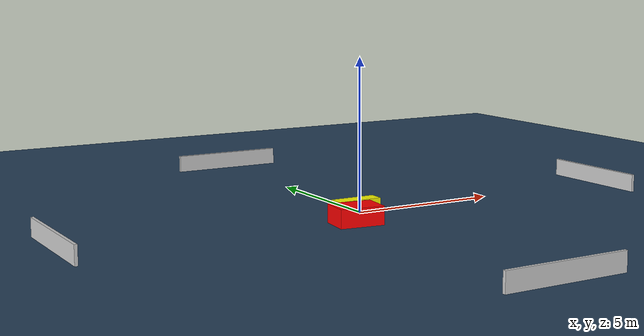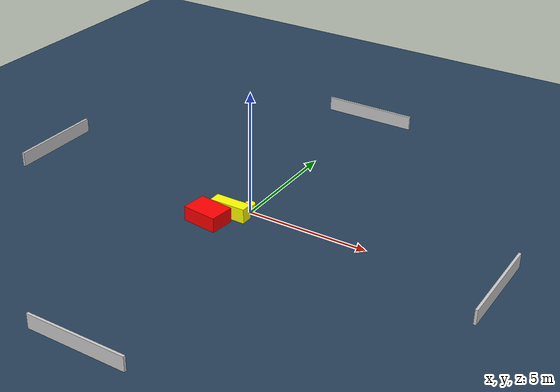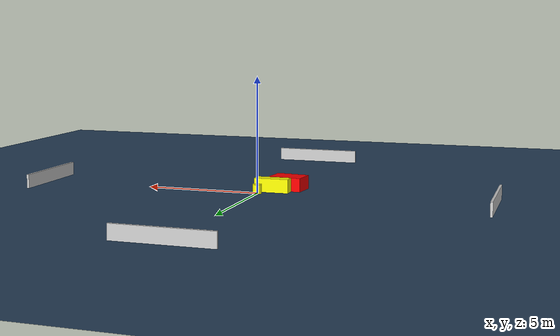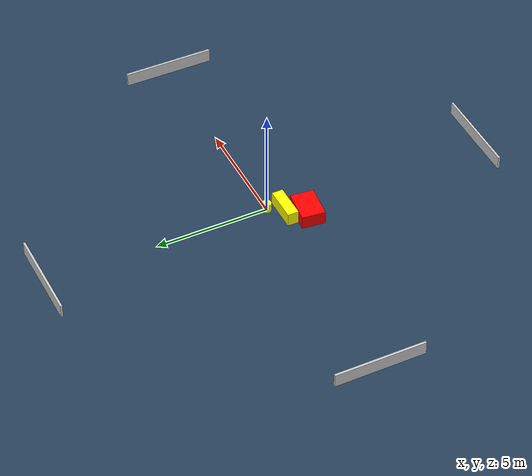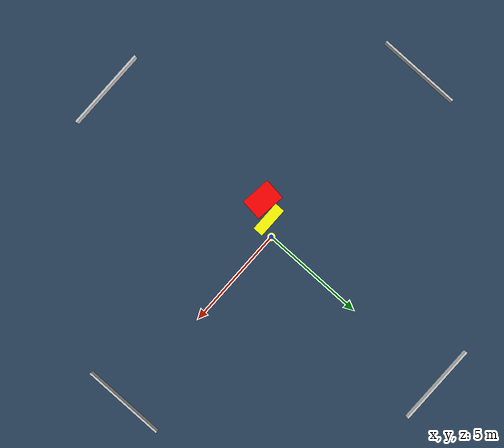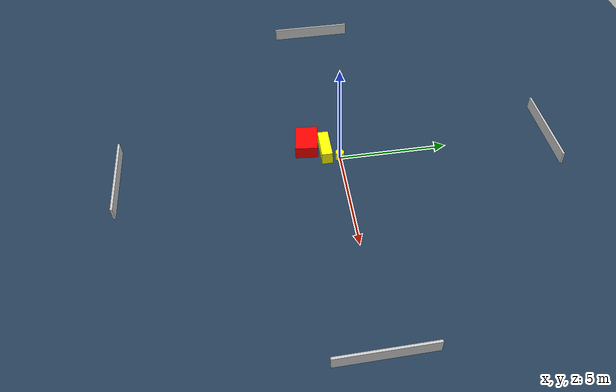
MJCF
<?xml version="1.0" ?>
<mujoco model="generated_environment">
  <option timestep="0.01" integrator="RK4" cone="elliptic"/>
  <default>
    <geom density="1"/>
  </default>
  <asset>
    <texture builtin="gradient" height="3072" name="skybox" rgb1="0.3 0.5 0.7" rgb2="0 0 0" type="skybox" width="512"/>
    <texture builtin="checker" height="300" name="groundplane" rgb1="0.2 0.3 0.4" rgb2="0.1 0.2 0.3" type="2d" width="300"/>
    <material name="groundplane" reflectance="0.2" texrepeat="5 5" texture="groundplane"/>
  </asset>
  <worldbody>
    <light dir="0 0 -1" directional="true" pos="0 0 1.5"/>
    <geom condim="3" friction="0.5 0.005 0.001" material="groundplane" name="floor" pos="0 0 0" size="0 0 0.05" type="plane"/>
    <body name="walls">
      <geom name="wall_1" condim="4" pos="-10.0 0.0 0.3" rgba="0.800000011920929 0.800000011920929 0.800000011920929 1.0" size="0.05 2.0 0.3" type="box"/>
      <geom name="wall_2" condim="4" pos="10.0 0.0 0.3" rgba="0.800000011920929 0.800000011920929 0.800000011920929 1.0" size="0.05 2.0 0.3" type="box"/>
      <geom name="wall_3" condim="4" pos="0.0 -10.0 0.3" rgba="0.800000011920929 0.800000011920929 0.800000011920929 1.0" size="2.0 0.05 0.3" type="box"/>
      <geom name="wall_4" condim="4" pos="0.0 10.0 0.3" rgba="0.800000011920929 0.800000011920929 0.800000011920929 1.0" size="2.0 0.05 0.3" type="box"/>
    </body>
    <body name="robot">
      <joint name="joint_x" type="slide" pos="0 0 0" axis="1 0 0"/>
      <joint name="joint_y" type="slide" pos="0 0 0" axis="0 1 0"/>
      <geom name="robot" type="cylinder" pos="0.0 0.0 0.2" size="0.2 0.2 0.0" mass="5.0" friction="1.0 0.005 0.0001" condim="4" rgba="1.0 1.0 0.0 1.0"/>
    </body>
    <body name="obstacle_1_movable">
      <geom name="obstacle_1_movable" condim="4" pos="-0.5020420900560435 -0.6086521002049726 0.3" euler="0 0 90.1780263083968" friction="0.0 0.005 0.001" rgba="1.0 1.0 0.0 1.0" size="0.2488324864055988 0.7515851420532547 0.3" type="box" mass="0.1"/>
      <joint type="free"/>
    </body>
    <body name="obstacle_2_static">
      <geom name="obstacle_2_static" condim="4" pos="-0.9967071292128158 -1.4101233268850855 0.3" euler="0 0 83.51457737902543" friction="0.0 0.005 0.001" rgba="1.0 0.0 0.0 1.0" size="0.5173222107748651 0.7245841984837176 0.3" type="box"/>
    </body>
  </worldbody>
  <actuator>
    <motor name="actuator_x" joint="joint_x" gear="1" ctrlrange="-1 1"/>
    <motor name="actuator_y" joint="joint_y" gear="1" ctrlrange="-1 1"/>
  </actuator>
</mujoco>
